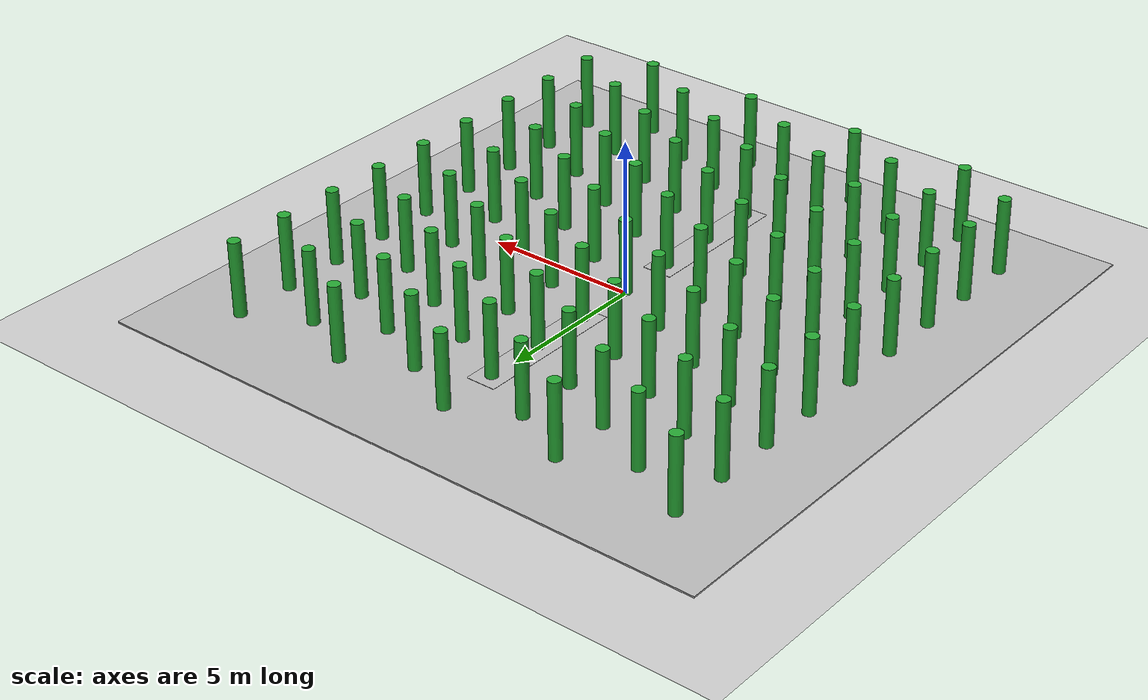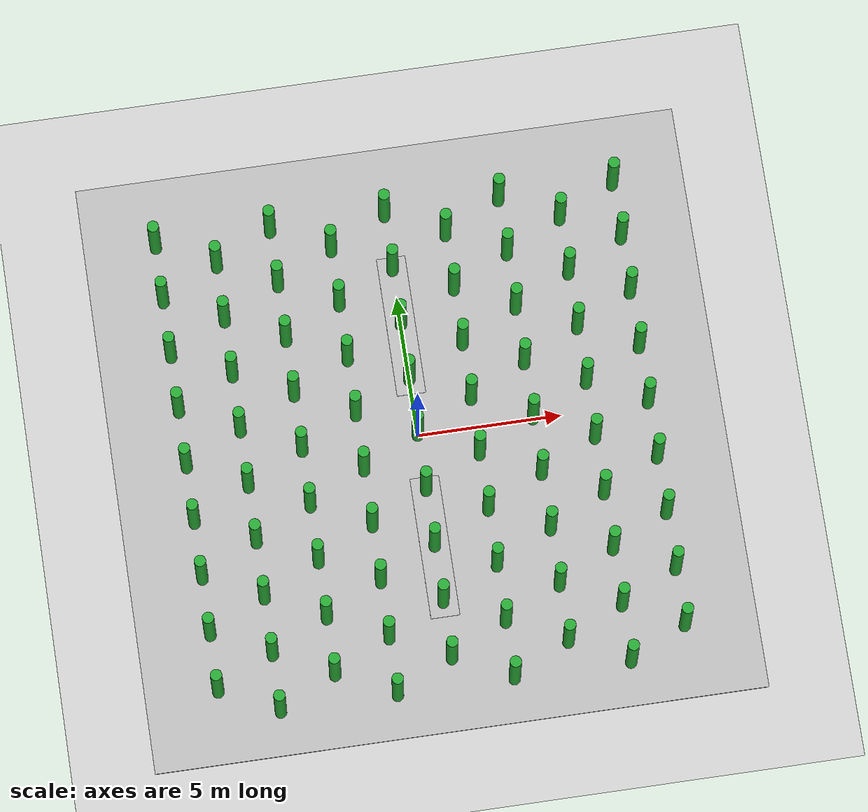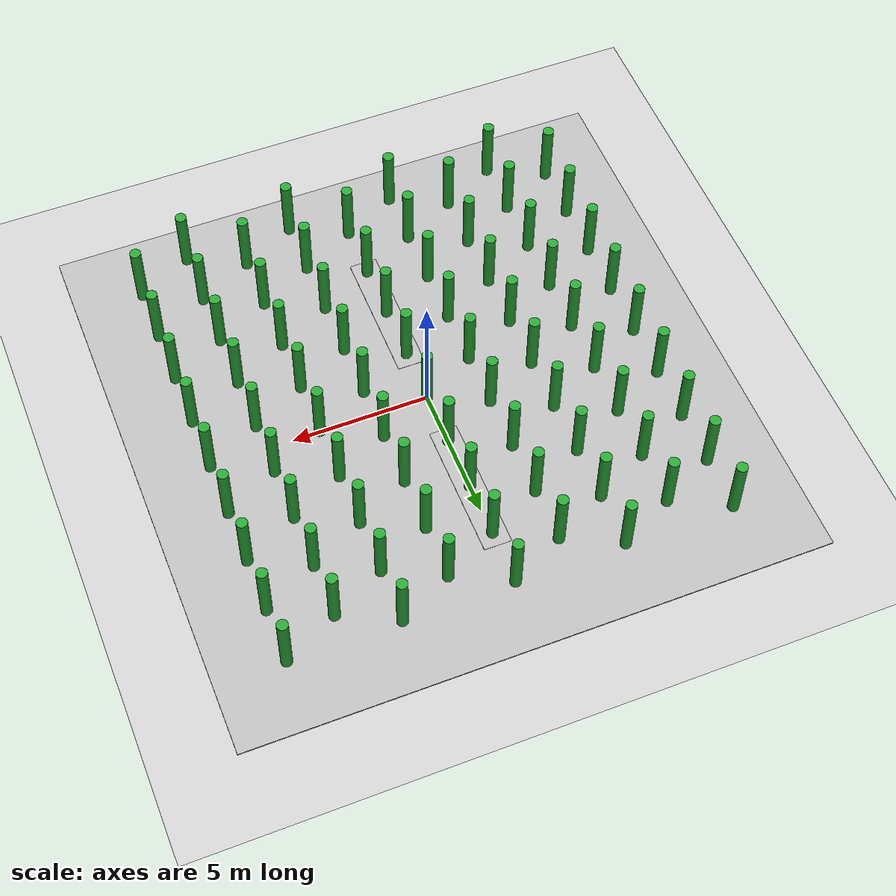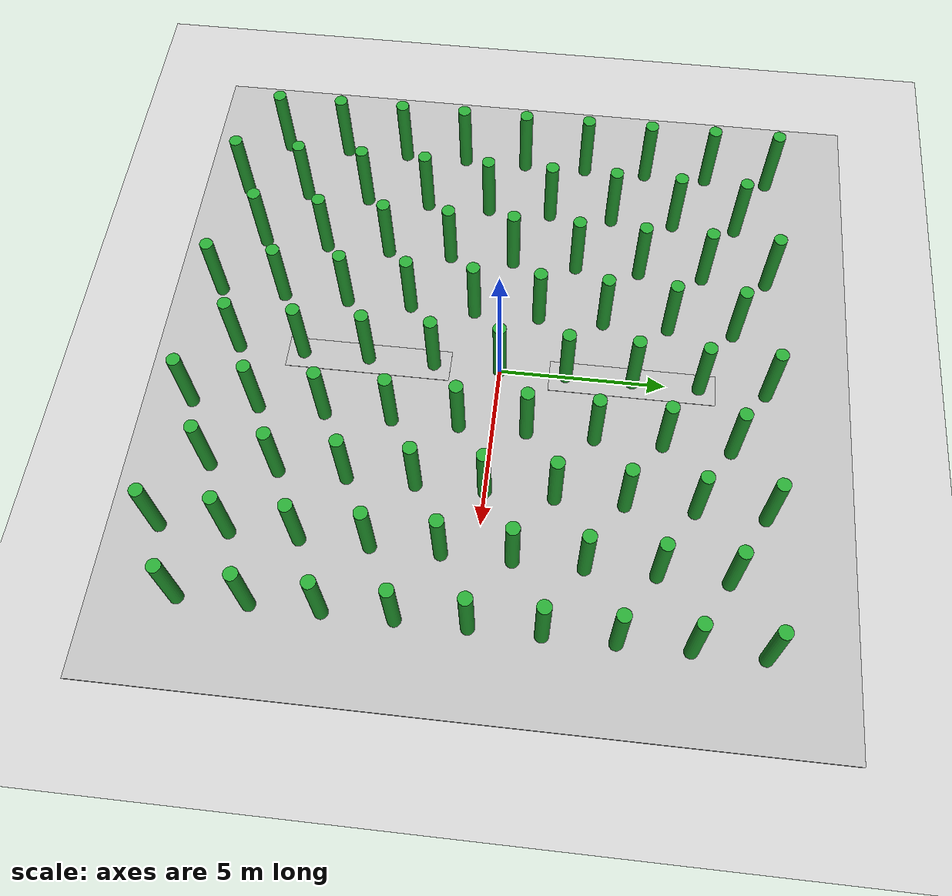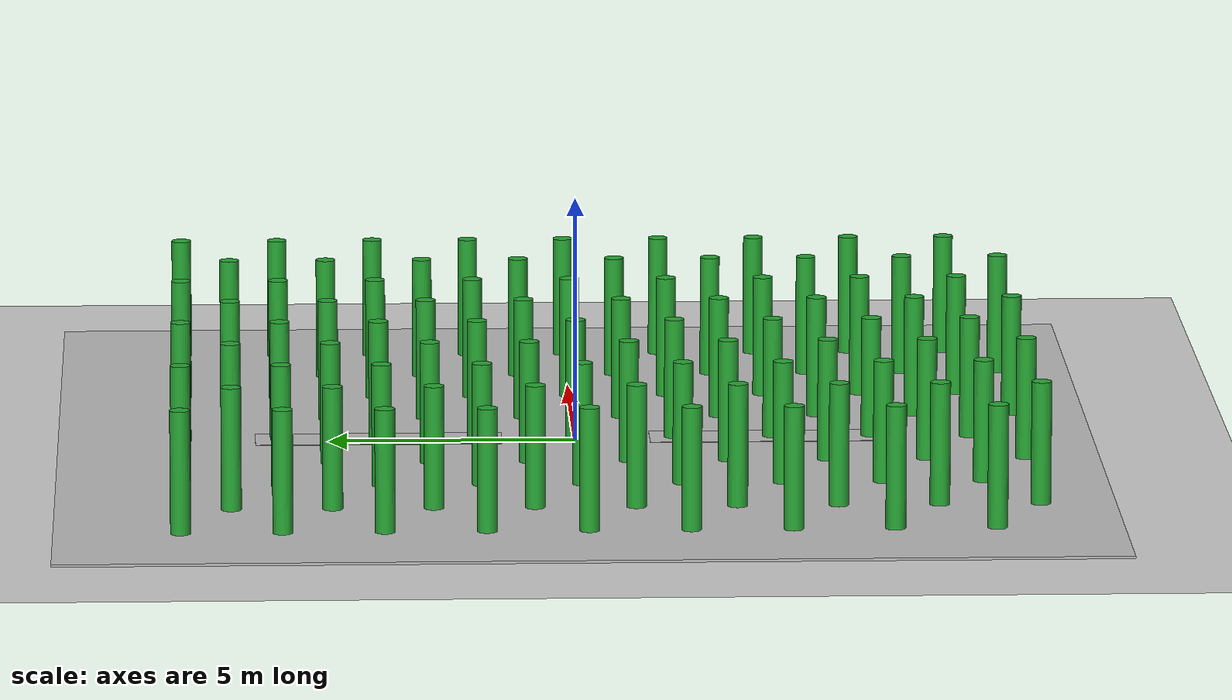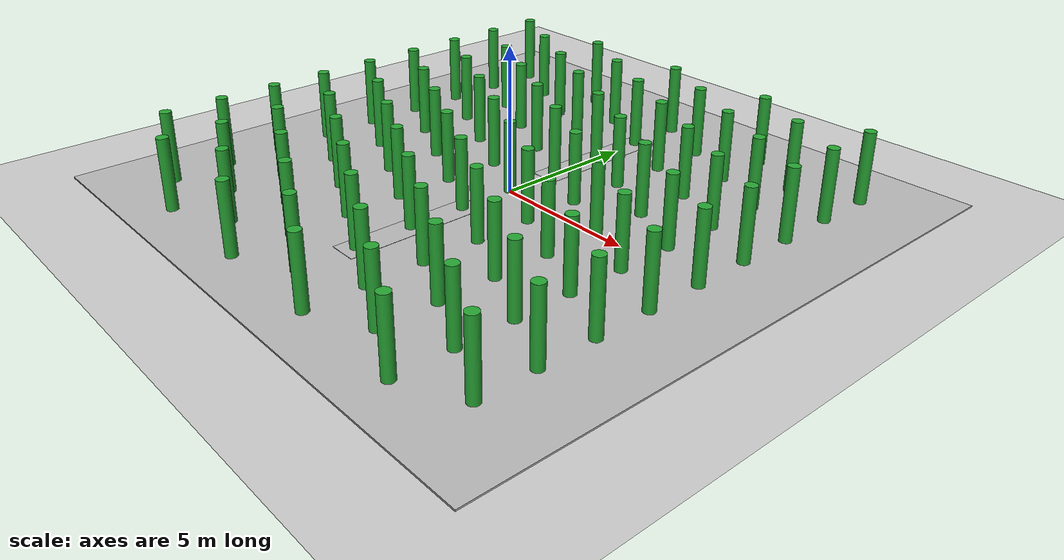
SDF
<sdf version="1.5">
 <world name="default">
  <physics type="ode">
   <gravity>0 0 -9.8066</gravity>
   <ode>
    <solver>
     <type>quick</type>
     <iters>10</iters>
     <sor>1.3</sor>
     <use_dynamic_moi_rescaling>0</use_dynamic_moi_rescaling>
    </solver>
    <constraints>
     <cfm>0.0</cfm>
     <erp>0.2</erp>
     <contact_max_correcting_vel>100</contact_max_correcting_vel>
     <contact_surface_layer>0.001</contact_surface_layer>
    </constraints>
   </ode>
   <max_step_size>0.004</max_step_size>
   <real_time_factor>1.0</real_time_factor>
   <real_time_update_rate>250</real_time_update_rate>
   <magnetic_field>6.0e-6 2.3e-5 -4.2e-5</magnetic_field>
  </physics>
  <light type="directional" name="sun">
   <cast_shadows>false</cast_shadows>
   <pose>0 0 100 0 0 0</pose>
   <diffuse>0.8 0.8 0.8 1</diffuse>
   <specular>0.9 0.9 0.9 1</specular>
   <attenuation>
    <range>1000</range>
    <constant>0.9</constant>
    <linear>0.01</linear>
    <quadratic>0.001</quadratic>
   </attenuation>
   <direction>0.2 0.2 -0.9</direction>
  </light>
  <include><uri>model://ground_plane</uri></include>
  <model name="texture">
   <static>true</static>
   <link name="lawn_ground">
    <visual name="visual">
     <cast_shadows>false</cast_shadows>
     <geometry><box><size>21 21 0.05</size></box></geometry>
     <material>
      <script>
       <uri>model://lawn_plane/materials/scripts</uri>
       <uri>model://lawn_plane/materials/textures</uri>
       <name>vrc/lawn</name>
      </script>
     </material>
    </visual>
   </link>
   <link name="sysu_logo2">
    <pose>-0.0 -4.0 0.05 0 0 0</pose>
    <visual name="visual">
     <cast_shadows>false</cast_shadows>
     <geometry><box><size>1.0 5.0 0.01</size></box></geometry>
     <material><script><uri>model://texture_CXY/texture.material</uri><name>xty</name></script></material>
    </visual>
   </link>
   <link name="sysu_logo">
    <pose>-0.0 4.0 0.05 0 0 0</pose>
    <visual name="visual">
     <cast_shadows>false</cast_shadows>
     <geometry><box><size>1.0 5.0 0.01</size></box></geometry>
     <material><script><uri>model://texture_CXY/texture.material</uri><name>xty</name></script></material>
    </visual>
   </link>
  </model>
  <model name="cylinder1_a">
   <include><uri>model://cylinder</uri><pose>8.0 -8.0 1.0 0 0 0</pose></include>
  </model>
  <model name="cylinder1_b">
   <include><uri>model://cylinder</uri><pose>8.0 -6.0 1.0 0 0 0</pose></include>
  </model>
  <model name="cylinder1_c">
   <include><uri>model://cylinder</uri><pose>8.0 -4.0 1.0 0 0 0</pose></include>
  </model>
  <model name="cylinder1_d">
   <include><uri>model://cylinder</uri><pose>8.0 -2.0 1.0 0 0 0</pose></include>
  </model>
  <model name="cylinder1_e">
   <include><uri>model://cylinder</uri><pose>8.0 -0.0 1.0 0 0 0</pose></include>
  </model>
  <model name="cylinder1_f"><include><uri>model://cylinder</uri><pose>8.0 2.0 1.0 0 0 0</pose></include></model>
  <model name="cylinder1_g"><include><uri>model://cylinder</uri><pose>8.0 4.0 1.0 0 0 0</pose></include></model>
  <model name="cylinder1_h"><include><uri>model://cylinder</uri><pose>8.0 6.0 1.0 0 0 0</pose></include></model>
  <model name="cylinder1_i"><include><uri>model://cylinder</uri><pose>8.0 8.0 1.0 0 0 0</pose></include></model>
  <model name="cylinder2_a">
   <include><uri>model://cylinder</uri><pose>6.0 -9.0 1.0 0 0 0</pose></include>
  </model>
  <model name="cylinder2_b">
   <include><uri>model://cylinder</uri><pose>6.0 -7.0 1.0 0 0 0</pose></include>
  </model>
  <model name="cylinder2_c">
   <include><uri>model://cylinder</uri><pose>6.0 -5.0 1.0 0 0 0</pose></include>
  </model>
  <model name="cylinder2_d">
   <include><uri>model://cylinder</uri><pose>6.0 -3.0 1.0 0 0 0</pose></include>
  </model>
  <model name="cylinder2_e">
   <include><uri>model://cylinder</uri><pose>6.0 -1.0 1.0 0 0 0</pose></include>
  </model>
  <model name="cylinder2_f"><include><uri>model://cylinder</uri><pose>6.0 1.0 1.0 0 0 0</pose></include></model>
  <model name="cylinder2_g"><include><uri>model://cylinder</uri><pose>6.0 3.0 1.0 0 0 0</pose></include></model>
  <model name="cylinder2_h"><include><uri>model://cylinder</uri><pose>6.0 5.0 1.0 0 0 0</pose></include></model>
  <model name="cylinder2_i"><include><uri>model://cylinder</uri><pose>6.0 7.0 1.0 0 0 0</pose></include></model>
  <model name="cylinder3_a">
   <include><uri>model://cylinder</uri><pose>4.0 -8.0 1.0 0 0 0</pose></include>
  </model>
  <model name="cylinder3_b">
   <include><uri>model://cylinder</uri><pose>4.0 -6.0 1.0 0 0 0</pose></include>
  </model>
  <model name="cylinder3_c">
   <include><uri>model://cylinder</uri><pose>4.0 -4.0 1.0 0 0 0</pose></include>
  </model>
  <model name="cylinder3_d">
   <include><uri>model://cylinder</uri><pose>4.0 -2.0 1.0 0 0 0</pose></include>
  </model>
  <model name="cylinder3_e">
   <include><uri>model://cylinder</uri><pose>4.0 -0.0 1.0 0 0 0</pose></include>
  </model>
  <model name="cylinder3_f"><include><uri>model://cylinder</uri><pose>4.0 2.0 1.0 0 0 0</pose></include></model>
  <model name="cylinder3_g"><include><uri>model://cylinder</uri><pose>4.0 4.0 1.0 0 0 0</pose></include></model>
  <model name="cylinder3_h"><include><uri>model://cylinder</uri><pose>4.0 6.0 1.0 0 0 0</pose></include></model>
  <model name="cylinder3_i"><include><uri>model://cylinder</uri><pose>4.0 8.0 1.0 0 0 0</pose></include></model>
  <model name="cylinder4_a">
   <include><uri>model://cylinder</uri><pose>2.0 -9.0 1.0 0 0 0</pose></include>
  </model>
  <model name="cylinder4_b">
   <include><uri>model://cylinder</uri><pose>2.0 -7.0 1.0 0 0 0</pose></include>
  </model>
  <model name="cylinder4_c">
   <include><uri>model://cylinder</uri><pose>2.0 -5.0 1.0 0 0 0</pose></include>
  </model>
  <model name="cylinder4_d">
   <include><uri>model://cylinder</uri><pose>2.0 -3.0 1.0 0 0 0</pose></include>
  </model>
  <model name="cylinder4_e">
   <include><uri>model://cylinder</uri><pose>2.0 -1.0 1.0 0 0 0</pose></include>
  </model>
  <model name="cylinder4_f"><include><uri>model://cylinder</uri><pose>2.0 1.0 1.0 0 0 0</pose></include></model>
  <model name="cylinder4_g"><include><uri>model://cylinder</uri><pose>2.0 3.0 1.0 0 0 0</pose></include></model>
  <model name="cylinder4_h"><include><uri>model://cylinder</uri><pose>2.0 5.0 1.0 0 0 0</pose></include></model>
  <model name="cylinder4_i"><include><uri>model://cylinder</uri><pose>2.0 7.0 1.0 0 0 0</pose></include></model>
  <model name="cylinder5_a">
   <include><uri>model://cylinder</uri><pose>0.0 -8.0 1.0 0 0 0</pose></include>
  </model>
  <model name="cylinder5_b">
   <include><uri>model://cylinder</uri><pose>0.0 -6.0 1.0 0 0 0</pose></include>
  </model>
  <model name="cylinder5_c">
   <include><uri>model://cylinder</uri><pose>0.0 -4.0 1.0 0 0 0</pose></include>
  </model>
  <model name="cylinder5_d">
   <include><uri>model://cylinder</uri><pose>0.0 -2.0 1.0 0 0 0</pose></include>
  </model>
  <model name="cylinder5_e">
   <include><uri>model://cylinder</uri><pose>0.0 -0.0 1.0 0 0 0</pose></include>
  </model>
  <model name="cylinder5_f"><include><uri>model://cylinder</uri><pose>0.0 2.0 1.0 0 0 0</pose></include></model>
  <model name="cylinder5_g"><include><uri>model://cylinder</uri><pose>0.0 4.0 1.0 0 0 0</pose></include></model>
  <model name="cylinder5_h"><include><uri>model://cylinder</uri><pose>0.0 6.0 1.0 0 0 0</pose></include></model>
  <model name="cylinder5_i"><include><uri>model://cylinder</uri><pose>0.0 8.0 1.0 0 0 0</pose></include></model>
  <model name="cylinder6_a">
   <include><uri>model://cylinder</uri><pose>-2.0 -9.0 1.0 0 0 0</pose></include>
  </model>
  <model name="cylinder6_b">
   <include><uri>model://cylinder</uri><pose>-2.0 -7.0 1.0 0 0 0</pose></include>
  </model>
  <model name="cylinder6_c">
   <include><uri>model://cylinder</uri><pose>-2.0 -5.0 1.0 0 0 0</pose></include>
  </model>
  <model name="cylinder6_d">
   <include><uri>model://cylinder</uri><pose>-2.0 -3.0 1.0 0 0 0</pose></include>
  </model>
  <model name="cylinder6_e">
   <include><uri>model://cylinder</uri><pose>-2.0 -1.0 1.0 0 0 0</pose></include>
  </model>
  <model name="cylinder6_f">
   <include><uri>model://cylinder</uri><pose>-2.0 1.0 1.0 0 0 0</pose></include>
  </model>
  <model name="cylinder6_g">
   <include><uri>model://cylinder</uri><pose>-2.0 3.0 1.0 0 0 0</pose></include>
  </model>
  <model name="cylinder6_h">
   <include><uri>model://cylinder</uri><pose>-2.0 5.0 1.0 0 0 0</pose></include>
  </model>
  <model name="cylinder6_i">
   <include><uri>model://cylinder</uri><pose>-2.0 7.0 1.0 0 0 0</pose></include>
  </model>
  <model name="cylinder7_a">
   <include><uri>model://cylinder</uri><pose>-4.0 -8.0 1.0 0 0 0</pose></include>
  </model>
  <model name="cylinder7_b">
   <include><uri>model://cylinder</uri><pose>-4.0 -6.0 1.0 0 0 0</pose></include>
  </model>
  <model name="cylinder7_c">
   <include><uri>model://cylinder</uri><pose>-4.0 -4.0 1.0 0 0 0</pose></include>
  </model>
  <model name="cylinder7_d">
   <include><uri>model://cylinder</uri><pose>-4.0 -2.0 1.0 0 0 0</pose></include>
  </model>
  <model name="cylinder7_e">
   <include><uri>model://cylinder</uri><pose>-4.0 -0.0 1.0 0 0 0</pose></include>
  </model>
  <model name="cylinder7_f">
   <include><uri>model://cylinder</uri><pose>-4.0 2.0 1.0 0 0 0</pose></include>
  </model>
  <model name="cylinder7_g">
   <include><uri>model://cylinder</uri><pose>-4.0 4.0 1.0 0 0 0</pose></include>
  </model>
  <model name="cylinder7_h">
   <include><uri>model://cylinder</uri><pose>-4.0 6.0 1.0 0 0 0</pose></include>
  </model>
  <model name="cylinder7_i">
   <include><uri>model://cylinder</uri><pose>-4.0 8.0 1.0 0 0 0</pose></include>
  </model>
  <model name="cylinder8_a">
   <include><uri>model://cylinder</uri><pose>-6.0 -9.0 1.0 0 0 0</pose></include>
  </model>
  <model name="cylinder8_b">
   <include><uri>model://cylinder</uri><pose>-6.0 -7.0 1.0 0 0 0</pose></include>
  </model>
  <model name="cylinder8_c">
   <include><uri>model://cylinder</uri><pose>-6.0 -5.0 1.0 0 0 0</pose></include>
  </model>
  <model name="cylinder8_d">
   <include><uri>model://cylinder</uri><pose>-6.0 -3.0 1.0 0 0 0</pose></include>
  </model>
  <model name="cylinder8_e">
   <include><uri>model://cylinder</uri><pose>-6.0 -1.0 1.0 0 0 0</pose></include>
  </model>
  <model name="cylinder8_f">
   <include><uri>model://cylinder</uri><pose>-6.0 1.0 1.0 0 0 0</pose></include>
  </model>
  <model name="cylinder8_g">
   <include><uri>model://cylinder</uri><pose>-6.0 3.0 1.0 0 0 0</pose></include>
  </model>
  <model name="cylinder8_h">
   <include><uri>model://cylinder</uri><pose>-6.0 5.0 1.0 0 0 0</pose></include>
  </model>
  <model name="cylinder8_i">
   <include><uri>model://cylinder</uri><pose>-6.0 7.0 1.0 0 0 0</pose></include>
  </model>
  <model name="cylinder9_a">
   <include><uri>model://cylinder</uri><pose>-8.0 -8.0 1.0 0 0 0</pose></include>
  </model>
  <model name="cylinder9_b">
   <include><uri>model://cylinder</uri><pose>-8.0 -6.0 1.0 0 0 0</pose></include>
  </model>
  <model name="cylinder9_c">
   <include><uri>model://cylinder</uri><pose>-8.0 -4.0 1.0 0 0 0</pose></include>
  </model>
  <model name="cylinder9_d">
   <include><uri>model://cylinder</uri><pose>-8.0 -2.0 1.0 0 0 0</pose></include>
  </model>
  <model name="cylinder9_e">
   <include><uri>model://cylinder</uri><pose>-8.0 -0.0 1.0 0 0 0</pose></include>
  </model>
  <model name="cylinder9_f">
   <include><uri>model://cylinder</uri><pose>-8.0 2.0 1.0 0 0 0</pose></include>
  </model>
  <model name="cylinder9_g">
   <include><uri>model://cylinder</uri><pose>-8.0 4.0 1.0 0 0 0</pose></include>
  </model>
  <model name="cylinder9_h">
   <include><uri>model://cylinder</uri><pose>-8.0 6.0 1.0 0 0 0</pose></include>
  </model>
  <model name="cylinder9_i">
   <include><uri>model://cylinder</uri><pose>-8.0 8.0 1.0 0 0 0</pose></include>
  </model>
 </world>
</sdf>

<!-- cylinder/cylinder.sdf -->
<sdf version='1.6'>
  <model name='cylinder'>
    <link name='link'>
      <inertial>
        <mass>1</mass>
        <pose frame=''>0 0 0 0 -0 0</pose>
      </inertial>
      <self_collide>0</self_collide>
      <enable_wind>0</enable_wind>
      <kinematic>0</kinematic>
      <pose frame=''>0 0 0 0 -0 0</pose>
      <gravity>1</gravity>
      <visual name='visual'>
        <geometry>
          <cylinder>
            <radius>0.2</radius>
            <length>3.0</length>
          </cylinder>
        </geometry>
        <material>
          <script>
            <name>Gazebo/Green</name>
            <uri>file://media/materials/scripts/gazebo.material</uri>
          </script>
          <shader type='pixel'>
            <normal_map>__default__</normal_map>
          </shader>
          <ambient>0. 0.914 0. 1</ambient>
          <diffuse>0.7 0.7 0.7 1</diffuse>
          <specular>0.01 0.01 0.01 1</specular>
          <emissive>0 0 0 1</emissive>
        </material>
        <pose frame=''>0 0 0 0 -0 0</pose>
        <transparency>0</transparency>
        <cast_shadows>1</cast_shadows>
      </visual>
    </link>
    <static>1</static>
    <allow_auto_disable>1</allow_auto_disable>
  </model>
</sdf>
